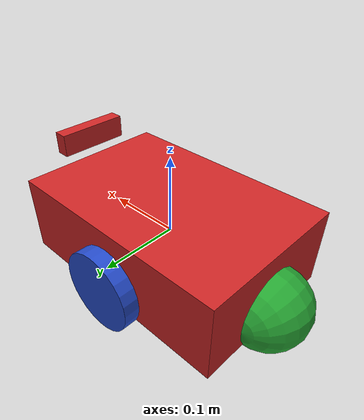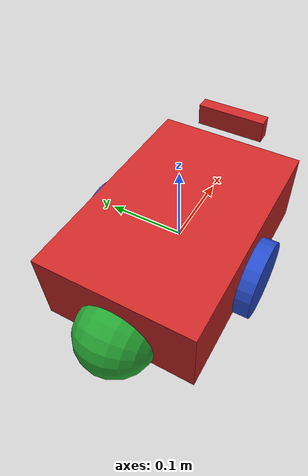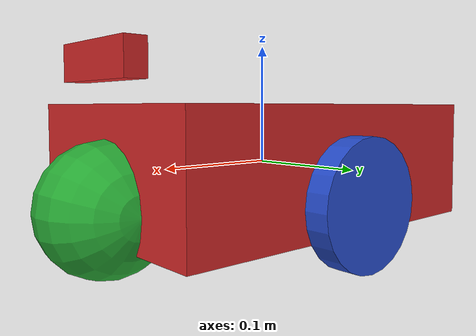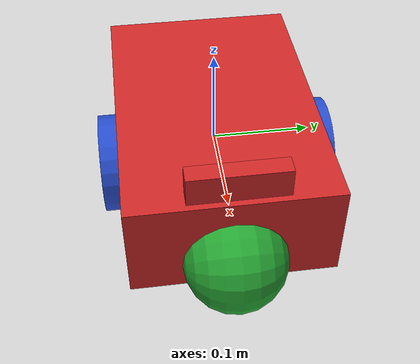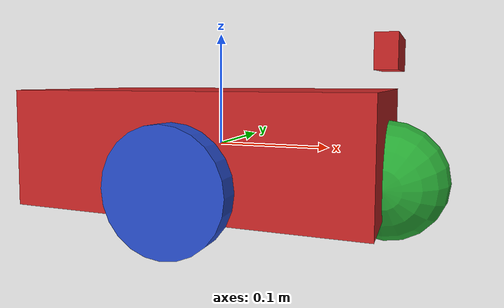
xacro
<?xml version="1.0" ?>
<robot name="lawn_mower" xmlns:xacro="http://www.ros.org/wiki/xacro">

  <xacro:include filename="$(find lawn_mower_description)/robot/materials.xacro" />
  <xacro:include filename="$(find lawn_mower_description)/robot/properties.xacro" />
  <xacro:include filename="$(find lawn_mower_description)/robot/macros.xacro" />
  <xacro:include filename="$(find lawn_mower_description)/robot/wheels.xacro" />
  <xacro:include filename="$(find lawn_mower_description)/robot/caster_wheels.xacro" />
  <xacro:include filename="$(find lawn_mower_description)/robot/lawn_mower_body.xacro" />
  <xacro:include filename="$(find lawn_mower_description)/robot/oakd_lite2.xacro" />
  <xacro:include filename="$(find lawn_mower_description)/robot/lawn_mower.gazebo" />

  <xacro:lawn_mower_body parent_name="${base_name}"/>

  <xacro:link_wheel name="right_wheel" r="${wheel_radius}" l="${wheel_width}" incr="${wheel_increment}"/>
  <xacro:joint_wheel name="joint_right_wheel" parent="${base_name}" child="right_wheel" origin_xyz="0 ${base_box_y / 2.0 + wheel_width/2.0} ${-1.0* base_box_z/2.0 + (wheel_radius + wheel_increment)/2}" />

  <xacro:link_wheel name="left_wheel" r="${wheel_radius}" l="${wheel_width}" incr="${wheel_increment}"/>
  <xacro:joint_wheel name="joint_left_wheel" parent="${base_name}" child="left_wheel" origin_xyz="0 ${-1.0 * base_box_y / 2.0 - wheel_width/2.0} ${-1.0* base_box_z/2.0 + (wheel_radius + wheel_increment)/2}" />

  <xacro:caster_wheel parent="chassis" caster_wheel_name="front" origin_xyz="${(base_box_x / 2.0) - wheel_increment} 0 ${-1.0* base_box_z/2.0 + (wheel_radius + wheel_increment)/2}" radius="${wheel_radius}" incr="${wheel_increment}"/>
  <xacro:caster_wheel parent="chassis" caster_wheel_name="rear" origin_xyz="${-1.0 * (base_box_x / 2.0) + wheel_increment} 0 ${-1.0* base_box_z/2.0 + (wheel_radius + wheel_increment)/2}" radius="${wheel_radius}" incr="${wheel_increment}"/>

  <xacro:oakd_lite parent="chassis" origin_xyz="${(base_box_x / 2.0)} 0 ${base_box_z/2.0 + 0.03}"/>

</robot>

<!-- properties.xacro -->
<robot xmlns:xacro="http://www.ros.org/wiki/xacro">

	<!-- Constants -->
	<xacro:property name="PI" value="3.1415926535897931"/>

	<!-- Base Box -->
    <xacro:property name="base_name" value="chassis"/>
    <xacro:property name="base_box_mass" value=".5"/>
	<xacro:property name="base_box_x" value="0.3"/>
    <xacro:property name="base_box_y" value="0.2"/>
    <xacro:property name="base_box_z" value="0.1"/>

    <!-- Wheels -->
	<xacro:property name="wheel_radius" value=".05"/>
    <xacro:property name="wheel_width" value="0.02"/>
    <xacro:property name="wheel_increment" value="0.001"/>
    <xacro:property name="mu1_wheel" value="1.0"/>
    <xacro:property name="mu2_wheel" value="1.0"/>
    <xacro:property name="kp_wheel" value="1000"/>
    <xacro:property name="kd_wheel" value="1000"/>

    <!--Caster Wheels-->
    <xacro:property name="dummy_length" value="0.001"/>

</robot>

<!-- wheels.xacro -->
<robot xmlns:xacro="http://www.ros.org/wiki/xacro">

    <!-- Wheels-->
    <xacro:macro  name="link_wheel" params="name r l incr">
      <link name="${name}">
          <inertial>
            <mass value="0.2"/>
            <origin rpy="0 1.5707 1.5707" xyz="0 0 0"/>
              <xacro:cylinder_inertia mass="0.2" r="${r + incr}" l="${l}" />
          </inertial>
          <collision name="link_right_wheel_collision">
            <origin rpy="0 1.5707 1.5707" xyz="0 0 0"/>
            <geometry>
              <cylinder length="${l}" radius="${r + incr}"/>
            </geometry>
          </collision>
          <visual name="link_right_wheel_visual">
            <origin rpy="0 1.5707 1.5707" xyz="0 0 0"/>
            <geometry>
              <cylinder length="${l}" radius="${r + incr}"/>
            </geometry>
          </visual>
      </link>

  </xacro:macro >

  <xacro:macro  name="joint_wheel" params="name parent child origin_xyz">
    <joint name="${name}" type="continuous">
      <origin rpy="0 0 0" xyz="${origin_xyz}"/>
      <child link="${child}"/>
      <parent link="${parent}"/>
      <axis rpy="0 0 0" xyz="0 1 0"/>
      <limit effort="10000" velocity="1000"/>
      <joint_properties damping="1.0" friction="1.0"/>
    </joint>
  </xacro:macro >

</robot>

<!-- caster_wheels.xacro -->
<robot xmlns:xacro="http://www.ros.org/wiki/xacro">

    <!-- Caster Wheels-->
    <xacro:macro  name="caster_wheel" params="parent caster_wheel_name origin_xyz radius incr">
      <!-- CASTER FRONT-->
      <link name="${caster_wheel_name}_yaw_link">
        <inertial>
            <mass value="0.001"/>
            <origin rpy="0 1.5707 1.5707" xyz="0 0 0"/>
            <xacro:sphere_inertia mass="0.001" r="${radius + incr}" />
          </inertial>
          <collision name="link_right_wheel_collision">
            <origin rpy="0 1.5707 1.5707" xyz="0 0 0"/>
            <geometry>
              <sphere radius="${radius + incr}"/>
            </geometry>
          </collision>
      </link>

      <joint name="${caster_wheel_name}_yaw_joint" type="continuous">
        <origin rpy="0 0 0" xyz="${origin_xyz}" />
        <parent link="${parent}" />
        <child link="${caster_wheel_name}_yaw_link" />
        <axis xyz="0 0 1" />
        <limit effort="1000.0" velocity="100.0" />
        <dynamics damping="0.0" friction="0.0"/>
      </joint>

      <transmission name="${caster_wheel_name}_yaw_joint_trans">
      <type>transmission_interface/SimpleTransmission</type>
      <joint name="${caster_wheel_name}_yaw_joint">
        <hardwareInterface>EffortJointInterface</hardwareInterface>
      </joint>
      <actuator name="${caster_wheel_name}_yaw_jointMotor">
        <hardwareInterface>EffortJointInterface</hardwareInterface>
        <mechanicalReduction>1</mechanicalReduction>
      </actuator>
    </transmission>

    <link name="${caster_wheel_name}_roll_link">
        <inertial>
            <mass value="0.001"/>
            <origin rpy="0 1.5707 1.5707" xyz="0 0 0"/>
            <xacro:sphere_inertia mass="0.001" r="${radius}" />
          </inertial>
          <collision name="link_right_wheel_collision">
            <origin rpy="0 1.5707 1.5707" xyz="0 0 0"/>
            <geometry>
              <sphere radius="${radius + incr}"/>
            </geometry>
          </collision>
      </link>

      <joint name="${caster_wheel_name}_roll_joint" type="continuous">
        <origin rpy="0 0 0" xyz="0 0 0" />
        <parent link="${caster_wheel_name}_yaw_link" />
        <child link="${caster_wheel_name}_roll_link" />
        <axis xyz="1 0 0" />
        <limit effort="1000.0" velocity="100.0" />
        <dynamics damping="0.0" friction="0.0"/>
      </joint>

      <transmission name="${caster_wheel_name}_roll_joint_trans">
      <type>transmission_interface/SimpleTransmission</type>
      <joint name="${caster_wheel_name}_roll_joint">
        <hardwareInterface>EffortJointInterface</hardwareInterface>
      </joint>
      <actuator name="${caster_wheel_name}_roll_jointMotor">
        <hardwareInterface>EffortJointInterface</hardwareInterface>
        <mechanicalReduction>1</mechanicalReduction>
      </actuator>
    </transmission>

      <link name="${caster_wheel_name}_pitch_link">
        <inertial>
          <mass value="0.001"/>
          <origin rpy="0 1.5707 1.5707" xyz="0 0 0"/>
            <xacro:sphere_inertia mass="0.001" r="${radius}"/>
        </inertial>
        <collision name="${caster_wheel_name}_collision">
          <origin rpy="0 1.5707 1.5707" xyz="0 0 0"/>
          <geometry>
            <sphere radius="${radius}"/>
          </geometry>
        </collision>
        <visual name="${caster_wheel_name}_visual">
          <origin rpy="0 1.5707 1.5707" xyz="0 0 0"/>
          <geometry>
            <sphere radius="${radius}"/>
          </geometry>
        </visual>
      </link>

      <joint name="${caster_wheel_name}_pitch_joint" type="continuous">
        <origin rpy="0 0 0" xyz="0 0 0" />
        <parent link="${caster_wheel_name}_roll_link" />
        <child link="${caster_wheel_name}_pitch_link" />
        <axis xyz="0 1 0" />
        <limit effort="1000.0" velocity="100.0" />
        <dynamics damping="0.0" friction="0.0"/>
      </joint>

    <gazebo reference="${caster_wheel_name}_pitch_link">
      <kp>1000000.0</kp>
      <kd>1000000.0</kd>
      <mu1>0</mu1>
      <mu2>0</mu2>
      <material>Gazebo/Green</material>
    </gazebo>
  </xacro:macro >

</robot>

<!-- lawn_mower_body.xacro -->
<robot xmlns:xacro="http://www.ros.org/wiki/xacro">

    <xacro:macro  name="lawn_mower_body" params="parent_name">

      <link name="${parent_name}">
        <!-- pose and inertial -->
        <pose>0 0 10 0 0 0</pose>
        <inertial>
          <mass value="${base_box_mass}"/>
          <origin rpy="0 0 0" xyz="0 0 1"/>
          <xacro:box_inertia mass="${base_box_mass}" x="${base_box_x}" y="${base_box_y}" z="${base_box_z}"/>
          <!--inertia ixx="1" ixy="0" ixz="0" iyy="1" iyz="0" izz="1"/-->
          <!--inertia ixx="0.000241935" ixy="0" ixz="0" iyy="0.000241935" iyz="0" izz="0.000241935"/-->
        </inertial>
        <!-- body -->
        <collision name="collision_${parent_name}">
          <geometry>
            <box size="${base_box_x} ${base_box_y} ${base_box_z}"/>
          </geometry>
          <surface>
            <contact>
              <ode>
                <kp>1e15</kp>
                <kd>1e13</kd>
              </ode>
            </contact>
          </surface>
        </collision>

        <visual name="visual_${parent_name}">
          <geometry>
            <box size="${base_box_x} ${base_box_y} ${base_box_z}"/>
          </geometry>
        </visual>
      </link>

      <gazebo reference="chassis">
        <material>Gazebo/Red</material>
      </gazebo>

    </xacro:macro >

</robot>

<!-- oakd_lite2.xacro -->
<robot xmlns:xacro="http://www.ros.org/wiki/xacro">
    <xacro:macro name="oakd_lite" params="parent origin_xyz">
        <joint name="oakd_lite_joint" type="fixed">
            <axis xyz="0 1 0" />
            <origin xyz="${origin_xyz}" rpy="0 0 0"/>
            <parent link="${parent}"/>
            <child link="oakd_lite_link"/>
        </joint>

        <link name="oakd_lite_link">
            <collision>
            <origin xyz="0 0 0" rpy="0 0 0"/>
            <geometry>
            <box size="0.0175 0.091 0.028"/>
            </geometry>
            </collision>

            <visual>
            <origin xyz="0 0 0" rpy="0 0 0"/>
            <geometry>
            <box size="0.0175 0.091 0.028"/>
            </geometry>
            <material name="red"/>
            </visual>

            <inertial>
            <mass value="1e-5" />
            <origin xyz="0 0 0" rpy="0 0 0"/>
            <inertia ixx="1e-6" ixy="0" ixz="0" iyy="1e-6" iyz="0" izz="1e-6" />
            </inertial>
        </link>

        <joint name="rgb_joint" type="fixed">
           <origin rpy="0 0 -0" xyz="0 0 0" />
	        <parent link="oakd_lite_link" />
	        <child link="rgb_link" />
	    </joint>

        <link name="rgb_link">
            <inertial>
	            <mass value="0.001" />
	            <origin xyz="0 0 0" />
	            <inertia ixx="0.0001" ixy="0.0" ixz="0.0" iyy="0.0001" iyz="0.0" izz="0.0001" />
          </inertial>
        </link>

        <joint name="left_joint" type="fixed">
           <origin rpy="0 0 -0" xyz="0 -0.0375 0" />
	        <parent link="oakd_lite_link" />
	        <child link="left_link" />
	    </joint>

        <link name="left_link">
            <inertial>
	            <mass value="0.001" />
	            <origin xyz="0 0 0" />
	            <inertia ixx="0.0001" ixy="0.0" ixz="0.0" iyy="0.0001" iyz="0.0" izz="0.0001" />
          </inertial>
        </link>

        <joint name="right_joint" type="fixed">
           <origin rpy="0 0 -0" xyz="0 0.0375 0" />
	        <parent link="oakd_lite_link" />
	        <child link="right_link" />
	    </joint>

        <link name="right_link">
            <inertial>
	            <mass value="0.001" />
	            <origin xyz="0 0 0" />
	            <inertia ixx="0.0001" ixy="0.0" ixz="0.0" iyy="0.0001" iyz="0.0" izz="0.0001" />
          </inertial>
        </link>
    </xacro:macro>

    <xacro:macro  name="rgb_camera">
        <joint name="rgb_joint" type="fixed">
            <axis xyz="0 1 0" />
            <origin xyz="${origin_xyz}" rpy="0 0 0"/>
            <parent link="${parent}"/>
            <child link="rgb_link"/>
        </joint>

        <link name="rgb_link">
            <collision>
            <origin xyz="0 0 0" rpy="0 0 0"/>
            <geometry>
            <box size="${box_dim} ${box_dim} ${box_dim}"/>
            </geometry>
            </collision>

            <visual>
            <origin xyz="0 0 0" rpy="0 0 0"/>
            <geometry>
            <box size="${box_dim} ${box_dim} ${box_dim}"/>
            </geometry>
            <material name="red"/>
            </visual>

            <inertial>
            <mass value="1e-5" />
            <origin xyz="0 0 0" rpy="0 0 0"/>
            <inertia ixx="1e-6" ixy="0" ixz="0" iyy="1e-6" iyz="0" izz="1e-6" />
            </inertial>
        </link>
    </xacro:macro>
</robot>
